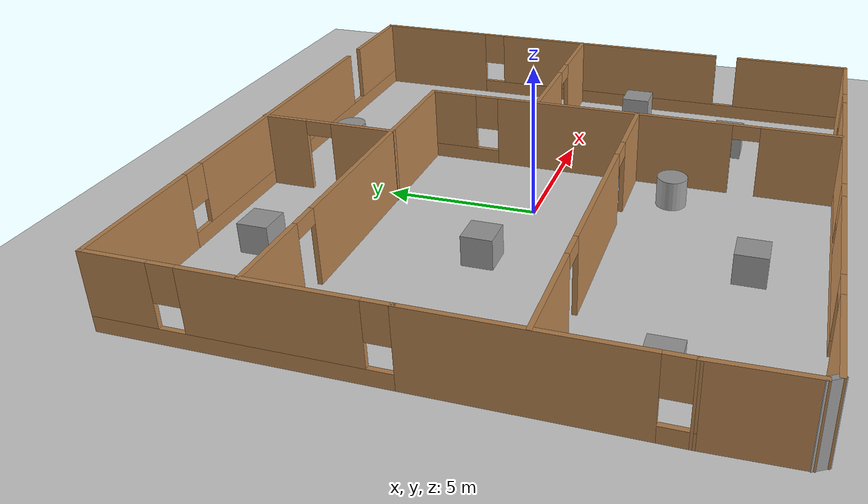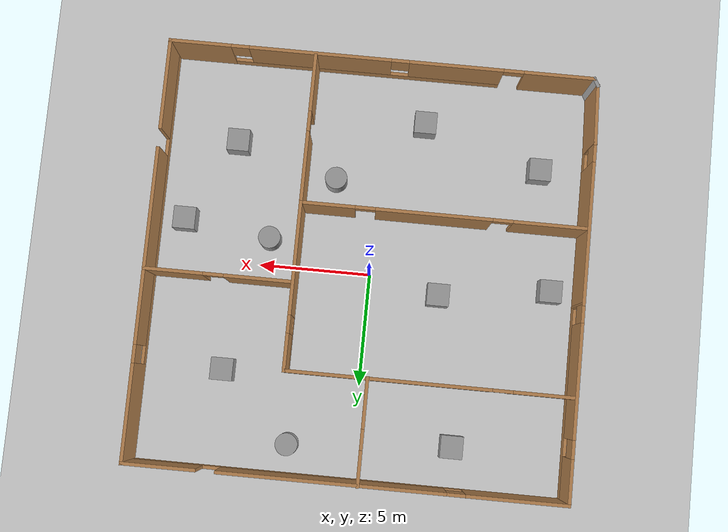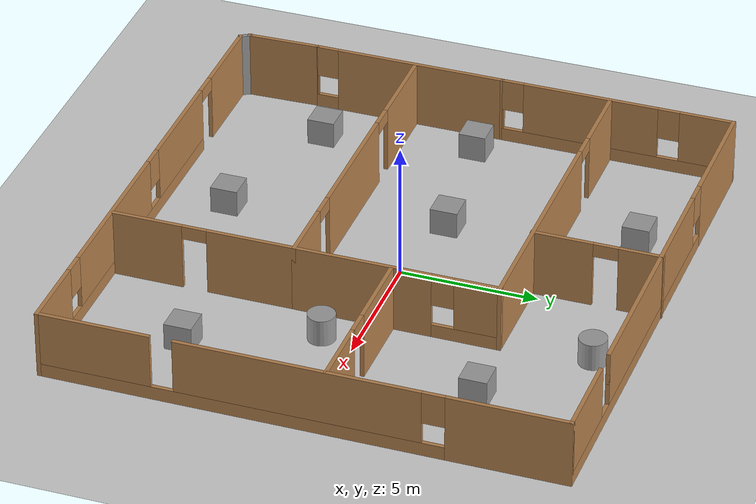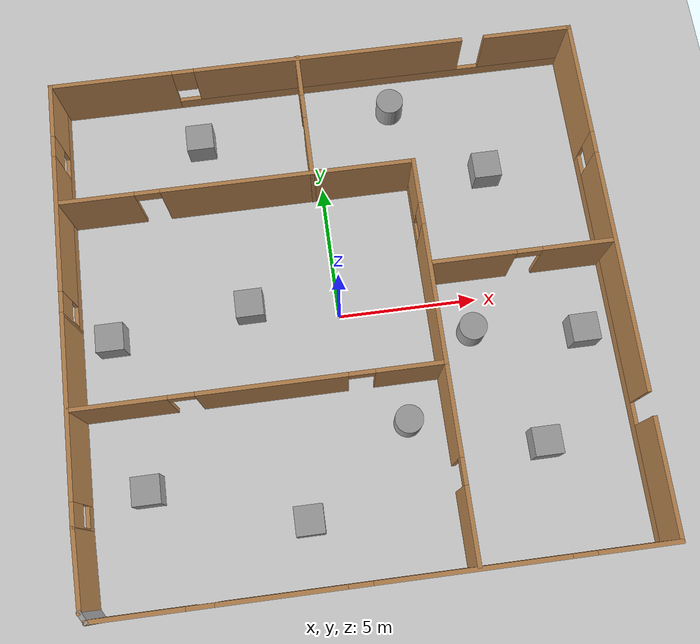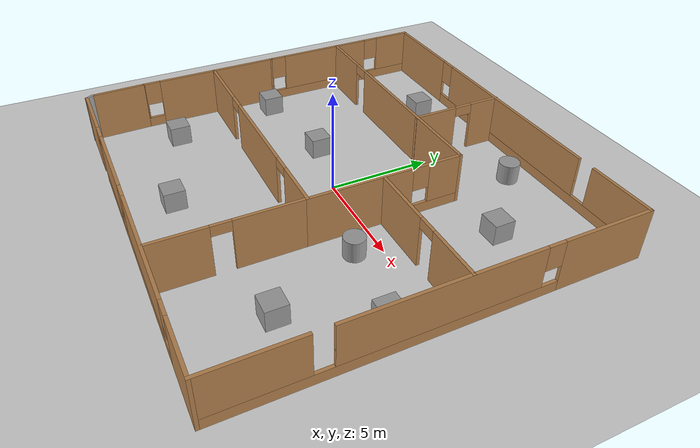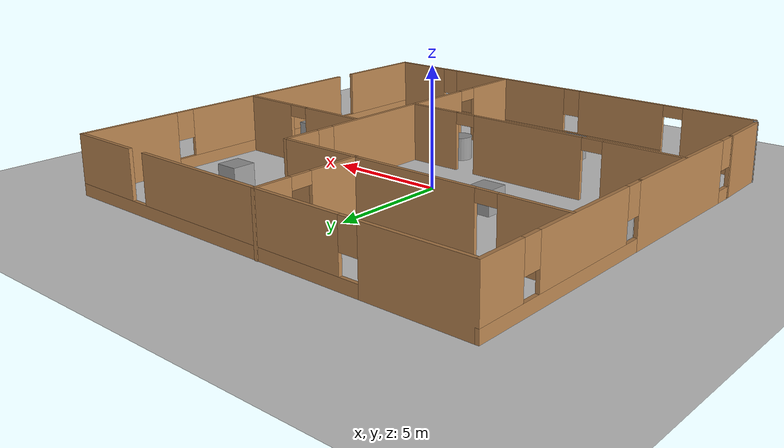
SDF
<sdf version="1.7">
 <world name="default">
  <light name="sun" type="directional">
   <pose>0 0 10 0 -0 0</pose>
   <diffuse>0.8 0.8 0.8 1</diffuse>
   <specular>0.2 0.2 0.2 1</specular>
   <attenuation>
    <range>1000</range>
    <constant>0.9</constant>
    <linear>0.01</linear>
    <quadratic>0.001</quadratic>
   </attenuation>
   <direction>-0.5 0.1 -0.9</direction>
   <spot><inner_angle>0</inner_angle><outer_angle>0</outer_angle><falloff>0</falloff></spot>
  </light>
  <model name="ground_plane">
   <static>1</static>
   <link name="link">
    <collision name="collision">
     <geometry><plane><normal>0 0 1</normal><size>100 100</size></plane></geometry>
     <surface>
      <contact><collide_bitmask>65535</collide_bitmask></contact>
      <friction><ode><mu>100</mu><mu2>50</mu2></ode></friction>
     </surface>
    </collision>
    <visual name="visual">
     <cast_shadows>0</cast_shadows>
     <geometry><plane><normal>0 0 1</normal><size>100 100</size></plane></geometry>
     <material>
      <script><uri>file://media/materials/scripts/gazebo.material</uri><name>Gazebo/Grey</name></script>
     </material>
    </visual>
   </link>
  </model>
  <gravity>0 0 -9.8</gravity>
  <magnetic_field>6e-06 2.3e-05 -4.2e-05</magnetic_field>
  <atmosphere type="adiabatic"/>
  <physics type="ode">
   <max_step_size>0.001</max_step_size>
   <real_time_factor>1</real_time_factor>
   <real_time_update_rate>1000</real_time_update_rate>
  </physics>
  <scene><ambient>0.4 0.4 0.4 1</ambient><background>0.7 0.7 0.7 1</background><shadows>1</shadows></scene>
  <audio><device>default</device></audio>
  <spherical_coordinates>
   <surface_model>EARTH_WGS84</surface_model>
   <latitude_deg>0</latitude_deg>
   <longitude_deg>0</longitude_deg>
   <elevation>0</elevation>
   <heading_deg>0</heading_deg>
  </spherical_coordinates>
  <model name="wall">
   <pose>0.18814 -0.067208 0 0 -0 0</pose>
   <link name="Wall_10">
    <collision name="Wall_10_Collision">
     <geometry><box><size>2.74797 0.15 2.5</size></box></geometry>
     <pose>0 0 1.25 0 -0 0</pose>
    </collision>
    <visual name="Wall_10_Visual">
     <pose>0 0 1.25 0 -0 0</pose>
     <geometry><box><size>2.74797 0.15 2.5</size></box></geometry>
     <material>
      <script><uri>file://media/materials/scripts/gazebo.material</uri><name>Gazebo/Wood</name></script>
      <ambient>1 1 1 1</ambient>
     </material>
     <meta><layer>0</layer></meta>
    </visual>
    <pose>-9.51143 -7.70024 0 0 -0 1.59967</pose>
   </link>
   <link name="Wall_12">
    <pose>-3.2338 -2.6042 0 0 -0 0</pose>
    <visual name="Wall_12_Visual_0">
     <pose>-4.6923 0 1.25 0 -0 0</pose>
     <geometry><box><size>3.3654 0.15 2.5</size></box></geometry>
     <material>
      <script><uri>file://media/materials/scripts/gazebo.material</uri><name>Gazebo/Wood</name></script>
      <ambient>1 1 1 1</ambient>
     </material>
     <meta><layer>0</layer></meta>
    </visual>
    <collision name="Wall_12_Collision_0">
     <geometry><box><size>3.3654 0.15 2.5</size></box></geometry>
     <pose>-4.6923 0 1.25 0 -0 0</pose>
    </collision>
    <visual name="Wall_12_Visual_1">
     <pose>0.457438 0 1.25 0 -0 0</pose>
     <geometry><box><size>5.13407 0.15 2.5</size></box></geometry>
     <material>
      <script><uri>file://media/materials/scripts/gazebo.material</uri><name>Gazebo/Wood</name></script>
      <ambient>1 1 1 1</ambient>
     </material>
     <meta><layer>0</layer></meta>
    </visual>
    <collision name="Wall_12_Collision_1">
     <geometry><box><size>5.13407 0.15 2.5</size></box></geometry>
     <pose>0.457438 0 1.25 0 -0 0</pose>
    </collision>
    <visual name="Wall_12_Visual_2">
     <pose>5.14974 0 1.25 0 -0 0</pose>
     <geometry><box><size>2.45053 0.15 2.5</size></box></geometry>
     <material>
      <script><uri>file://media/materials/scripts/gazebo.material</uri><name>Gazebo/Wood</name></script>
      <ambient>1 1 1 1</ambient>
     </material>
     <meta><layer>0</layer></meta>
    </visual>
    <collision name="Wall_12_Collision_2">
     <geometry><box><size>2.45053 0.15 2.5</size></box></geometry>
     <pose>5.14974 0 1.25 0 -0 0</pose>
    </collision>
    <visual name="Wall_12_Visual_3">
     <pose>-2.5596 0 2.25 0 -0 0</pose>
     <geometry><box><size>0.9 0.15 0.5</size></box></geometry>
     <material>
      <script><uri>file://media/materials/scripts/gazebo.material</uri><name>Gazebo/Wood</name></script>
      <ambient>1 1 1 1</ambient>
     </material>
     <meta><layer>0</layer></meta>
    </visual>
    <collision name="Wall_12_Collision_3">
     <geometry><box><size>0.9 0.15 0.5</size></box></geometry>
     <pose>-2.5596 0 2.25 0 -0 0</pose>
    </collision>
    <visual name="Wall_12_Visual_4">
     <pose>3.47447 0 2.25 0 -0 0</pose>
     <geometry><box><size>0.9 0.15 0.5</size></box></geometry>
     <material>
      <script><uri>file://media/materials/scripts/gazebo.material</uri><name>Gazebo/Wood</name></script>
      <ambient>1 1 1 1</ambient>
     </material>
     <meta><layer>0</layer></meta>
    </visual>
    <collision name="Wall_12_Collision_4">
     <geometry><box><size>0.9 0.15 0.5</size></box></geometry>
     <pose>3.47447 0 2.25 0 -0 0</pose>
    </collision>
   </link>
   <link name="Wall_13">
    <pose>3.0662 -5.90421 0 0 -0 -1.5708</pose>
    <visual name="Wall_13_Visual_0">
     <pose>-1.74609 0 1.25 0 -0 0</pose>
     <geometry><box><size>3.25782 0.15 2.5</size></box></geometry>
     <material>
      <script><uri>file://media/materials/scripts/gazebo.material</uri><name>Gazebo/Wood</name></script>
      <ambient>1 1 1 1</ambient>
     </material>
     <meta><layer>0</layer></meta>
    </visual>
    <collision name="Wall_13_Collision_0">
     <geometry><box><size>3.25782 0.15 2.5</size></box></geometry>
     <pose>-1.74609 0 1.25 0 -0 0</pose>
    </collision>
    <visual name="Wall_13_Visual_1">
     <pose>2.07891 0 1.25 0 -0 0</pose>
     <geometry><box><size>2.59218 0.15 2.5</size></box></geometry>
     <material>
      <script><uri>file://media/materials/scripts/gazebo.material</uri><name>Gazebo/Wood</name></script>
      <ambient>1 1 1 1</ambient>
     </material>
     <meta><layer>0</layer></meta>
    </visual>
    <collision name="Wall_13_Collision_1">
     <geometry><box><size>2.59218 0.15 2.5</size></box></geometry>
     <pose>2.07891 0 1.25 0 -0 0</pose>
    </collision>
    <visual name="Wall_13_Visual_2">
     <pose>0.332819 0 2.25 0 -0 0</pose>
     <geometry><box><size>0.9 0.15 0.5</size></box></geometry>
     <material>
      <script><uri>file://media/materials/scripts/gazebo.material</uri><name>Gazebo/Wood</name></script>
      <ambient>1 1 1 1</ambient>
     </material>
     <meta><layer>0</layer></meta>
    </visual>
    <collision name="Wall_13_Collision_2">
     <geometry><box><size>0.9 0.15 0.5</size></box></geometry>
     <pose>0.332819 0 2.25 0 -0 0</pose>
    </collision>
   </link>
   <link name="Wall_15">
    <pose>3.0662 1.07079 0 0 -0 1.5708</pose>
    <visual name="Wall_15_Visual_0">
     <pose>-1.24271 0 1.25 0 -0 0</pose>
     <geometry><box><size>5.01458 0.15 2.5</size></box></geometry>
     <material>
      <script><uri>file://media/materials/scripts/gazebo.material</uri><name>Gazebo/Wood</name></script>
      <ambient>1 1 1 1</ambient>
     </material>
     <meta><layer>0</layer></meta>
    </visual>
    <collision name="Wall_15_Collision_0">
     <geometry><box><size>5.01458 0.15 2.5</size></box></geometry>
     <pose>-1.24271 0 1.25 0 -0 0</pose>
    </collision>
    <visual name="Wall_15_Visual_1">
     <pose>2.50729 0 0.25 0 -0 0</pose>
     <geometry><box><size>2.48542 0.15 0.5</size></box></geometry>
     <material>
      <script><uri>file://media/materials/scripts/gazebo.material</uri><name>Gazebo/Wood</name></script>
      <ambient>1 1 1 1</ambient>
     </material>
     <meta><layer>0</layer></meta>
    </visual>
    <collision name="Wall_15_Collision_1">
     <geometry><box><size>2.48542 0.15 0.5</size></box></geometry>
     <pose>2.50729 0 0.25 0 -0 0</pose>
    </collision>
    <visual name="Wall_15_Visual_2">
     <pose>2.90729 0 1.5 0 -0 0</pose>
     <geometry><box><size>1.68542 0.15 2</size></box></geometry>
     <material>
      <script><uri>file://media/materials/scripts/gazebo.material</uri><name>Gazebo/Wood</name></script>
      <ambient>1 1 1 1</ambient>
     </material>
     <meta><layer>0</layer></meta>
    </visual>
    <collision name="Wall_15_Collision_2">
     <geometry><box><size>1.68542 0.15 2</size></box></geometry>
     <pose>2.90729 0 1.5 0 -0 0</pose>
    </collision>
    <visual name="Wall_15_Visual_3">
     <pose>1.66458 0 1.9 0 -0 0</pose>
     <geometry><box><size>0.8 0.15 1.2</size></box></geometry>
     <material>
      <script><uri>file://media/materials/scripts/gazebo.material</uri><name>Gazebo/Wood</name></script>
      <ambient>1 1 1 1</ambient>
     </material>
     <meta><layer>0</layer></meta>
    </visual>
    <collision name="Wall_15_Collision_3">
     <geometry><box><size>0.8 0.15 1.2</size></box></geometry>
     <pose>1.66458 0 1.9 0 -0 0</pose>
    </collision>
   </link>
   <link name="Wall_16">
    <pose>-3.2338 4.7458 0 0 -0 3.14159</pose>
    <visual name="Wall_16_Visual_0">
     <pose>-1.84411 0 1.25 0 -0 0</pose>
     <geometry><box><size>9.06177 0.15 2.5</size></box></geometry>
     <material>
      <script><uri>file://media/materials/scripts/gazebo.material</uri><name>Gazebo/Wood</name></script>
      <ambient>1 1 1 1</ambient>
     </material>
     <meta><layer>0</layer></meta>
    </visual>
    <collision name="Wall_16_Collision_0">
     <geometry><box><size>9.06177 0.15 2.5</size></box></geometry>
     <pose>-1.84411 0 1.25 0 -0 0</pose>
    </collision>
    <visual name="Wall_16_Visual_1">
     <pose>4.98088 0 1.25 0 -0 0</pose>
     <geometry><box><size>2.78823 0.15 2.5</size></box></geometry>
     <material>
      <script><uri>file://media/materials/scripts/gazebo.material</uri><name>Gazebo/Wood</name></script>
      <ambient>1 1 1 1</ambient>
     </material>
     <meta><layer>0</layer></meta>
    </visual>
    <collision name="Wall_16_Collision_1">
     <geometry><box><size>2.78823 0.15 2.5</size></box></geometry>
     <pose>4.98088 0 1.25 0 -0 0</pose>
    </collision>
    <visual name="Wall_16_Visual_2">
     <pose>3.13677 0 2.25 0 -0 0</pose>
     <geometry><box><size>0.9 0.15 0.5</size></box></geometry>
     <material>
      <script><uri>file://media/materials/scripts/gazebo.material</uri><name>Gazebo/Wood</name></script>
      <ambient>1 1 1 1</ambient>
     </material>
     <meta><layer>0</layer></meta>
    </visual>
    <collision name="Wall_16_Collision_2">
     <geometry><box><size>0.9 0.15 0.5</size></box></geometry>
     <pose>3.13677 0 2.25 0 -0 0</pose>
    </collision>
   </link>
   <link name="Wall_18">
    <pose>6.37092 0.909016 0 0 -0 0</pose>
    <visual name="Wall_18_Visual_0">
     <pose>-1.76691 0 1.25 0 -0 0</pose>
     <geometry><box><size>2.96617 0.15 2.5</size></box></geometry>
     <material>
      <script><uri>file://media/materials/scripts/gazebo.material</uri><name>Gazebo/Wood</name></script>
      <ambient>1 1 1 1</ambient>
     </material>
     <meta><layer>0</layer></meta>
    </visual>
    <collision name="Wall_18_Collision_0">
     <geometry><box><size>2.96617 0.15 2.5</size></box></geometry>
     <pose>-1.76691 0 1.25 0 -0 0</pose>
    </collision>
    <visual name="Wall_18_Visual_1">
     <pose>1.93309 0 1.25 0 -0 0</pose>
     <geometry><box><size>2.63383 0.15 2.5</size></box></geometry>
     <material>
      <script><uri>file://media/materials/scripts/gazebo.material</uri><name>Gazebo/Wood</name></script>
      <ambient>1 1 1 1</ambient>
     </material>
     <meta><layer>0</layer></meta>
    </visual>
    <collision name="Wall_18_Collision_1">
     <geometry><box><size>2.63383 0.15 2.5</size></box></geometry>
     <pose>1.93309 0 1.25 0 -0 0</pose>
    </collision>
    <visual name="Wall_18_Visual_2">
     <pose>0.166173 0 2.25 0 -0 0</pose>
     <geometry><box><size>0.9 0.15 0.5</size></box></geometry>
     <material>
      <script><uri>file://media/materials/scripts/gazebo.material</uri><name>Gazebo/Wood</name></script>
      <ambient>1 1 1 1</ambient>
     </material>
     <meta><layer>0</layer></meta>
    </visual>
    <collision name="Wall_18_Collision_2">
     <geometry><box><size>0.9 0.15 0.5</size></box></geometry>
     <pose>0.166173 0 2.25 0 -0 0</pose>
    </collision>
   </link>
   <link name="Wall_22">
    <pose>-0.546378 7.02924 0 0 -0 1.5708</pose>
    <visual name="Wall_22_Visual_0">
     <pose>-1.25074 0 1.25 0 -0 0</pose>
     <geometry><box><size>2.24851 0.15 2.5</size></box></geometry>
     <material>
      <script><uri>file://media/materials/scripts/gazebo.material</uri><name>Gazebo/Wood</name></script>
      <ambient>1 1 1 1</ambient>
     </material>
     <meta><layer>0</layer></meta>
    </visual>
    <collision name="Wall_22_Collision_0">
     <geometry><box><size>2.24851 0.15 2.5</size></box></geometry>
     <pose>-1.25074 0 1.25 0 -0 0</pose>
    </collision>
    <visual name="Wall_22_Visual_1">
     <pose>1.57425 0 1.25 0 -0 0</pose>
     <geometry><box><size>1.60149 0.15 2.5</size></box></geometry>
     <material>
      <script><uri>file://media/materials/scripts/gazebo.material</uri><name>Gazebo/Wood</name></script>
      <ambient>1 1 1 1</ambient>
     </material>
     <meta><layer>0</layer></meta>
    </visual>
    <collision name="Wall_22_Collision_1">
     <geometry><box><size>1.60149 0.15 2.5</size></box></geometry>
     <pose>1.57425 0 1.25 0 -0 0</pose>
    </collision>
    <visual name="Wall_22_Visual_2">
     <pose>0.32351 0 2.25 0 -0 0</pose>
     <geometry><box><size>0.9 0.15 0.5</size></box></geometry>
     <material>
      <script><uri>file://media/materials/scripts/gazebo.material</uri><name>Gazebo/Wood</name></script>
      <ambient>1 1 1 1</ambient>
     </material>
     <meta><layer>0</layer></meta>
    </visual>
    <collision name="Wall_22_Collision_2">
     <geometry><box><size>0.9 0.15 0.5</size></box></geometry>
     <pose>0.32351 0 2.25 0 -0 0</pose>
    </collision>
   </link>
   <link name="Wall_3">
    <pose>-9.54893 -2.85179 0 0 -0 -1.5708</pose>
    <visual name="Wall_3_Visual_0">
     <pose>-0.45106 0 1.25 0 -0 0</pose>
     <geometry><box><size>6.34788 0.15 2.5</size></box></geometry>
     <material>
      <script><uri>file://media/materials/scripts/gazebo.material</uri><name>Gazebo/Wood</name></script>
      <ambient>1 1 1 1</ambient>
     </material>
     <meta><layer>0</layer></meta>
    </visual>
    <collision name="Wall_3_Collision_0">
     <geometry><box><size>6.34788 0.15 2.5</size></box></geometry>
     <pose>-0.45106 0 1.25 0 -0 0</pose>
    </collision>
    <visual name="Wall_3_Visual_1">
     <pose>3.17394 0 0.25 0 -0 0</pose>
     <geometry><box><size>0.902119 0.15 0.5</size></box></geometry>
     <material>
      <script><uri>file://media/materials/scripts/gazebo.material</uri><name>Gazebo/Wood</name></script>
      <ambient>1 1 1 1</ambient>
     </material>
     <meta><layer>0</layer></meta>
    </visual>
    <collision name="Wall_3_Collision_1">
     <geometry><box><size>0.902119 0.15 0.5</size></box></geometry>
     <pose>3.17394 0 0.25 0 -0 0</pose>
    </collision>
    <visual name="Wall_3_Visual_2">
     <pose>3.57394 0 1.5 0 -0 0</pose>
     <geometry><box><size>0.102119 0.15 2</size></box></geometry>
     <material>
      <script><uri>file://media/materials/scripts/gazebo.material</uri><name>Gazebo/Wood</name></script>
      <ambient>1 1 1 1</ambient>
     </material>
     <meta><layer>0</layer></meta>
    </visual>
    <collision name="Wall_3_Collision_2">
     <geometry><box><size>0.102119 0.15 2</size></box></geometry>
     <pose>3.57394 0 1.5 0 -0 0</pose>
    </collision>
    <visual name="Wall_3_Visual_3">
     <pose>3.12288 0 1.9 0 -0 0</pose>
     <geometry><box><size>0.8 0.15 1.2</size></box></geometry>
     <material>
      <script><uri>file://media/materials/scripts/gazebo.material</uri><name>Gazebo/Wood</name></script>
      <ambient>1 1 1 1</ambient>
     </material>
     <meta><layer>0</layer></meta>
    </visual>
    <collision name="Wall_3_Collision_3">
     <geometry><box><size>0.8 0.15 1.2</size></box></geometry>
     <pose>3.12288 0 1.9 0 -0 0</pose>
    </collision>
   </link>
   <link name="Wall_5">
    <pose>-9.54893 4.99821 0 0 -0 1.5708</pose>
    <visual name="Wall_5_Visual_0">
     <pose>-4.3322 0 1.25 0 -0 0</pose>
     <geometry><box><size>0.085595 0.15 2.5</size></box></geometry>
     <material>
      <script><uri>file://media/materials/scripts/gazebo.material</uri><name>Gazebo/Wood</name></script>
      <ambient>1 1 1 1</ambient>
     </material>
     <meta><layer>0</layer></meta>
    </visual>
    <collision name="Wall_5_Collision_0">
     <geometry><box><size>0.085595 0.15 2.5</size></box></geometry>
     <pose>-4.3322 0 1.25 0 -0 0</pose>
    </collision>
    <visual name="Wall_5_Visual_1">
     <pose>0.042797 0 0.25 0 -0 0</pose>
     <geometry><box><size>8.66441 0.15 0.5</size></box></geometry>
     <material>
      <script><uri>file://media/materials/scripts/gazebo.material</uri><name>Gazebo/Wood</name></script>
      <ambient>1 1 1 1</ambient>
     </material>
     <meta><layer>0</layer></meta>
    </visual>
    <collision name="Wall_5_Collision_1">
     <geometry><box><size>8.66441 0.15 0.5</size></box></geometry>
     <pose>0.042797 0 0.25 0 -0 0</pose>
    </collision>
    <visual name="Wall_5_Visual_2">
     <pose>-0.97731 0 1.5 0 -0 0</pose>
     <geometry><box><size>5.02419 0.15 2</size></box></geometry>
     <material>
      <script><uri>file://media/materials/scripts/gazebo.material</uri><name>Gazebo/Wood</name></script>
      <ambient>1 1 1 1</ambient>
     </material>
     <meta><layer>0</layer></meta>
    </visual>
    <collision name="Wall_5_Collision_2">
     <geometry><box><size>5.02419 0.15 2</size></box></geometry>
     <pose>-0.97731 0 1.5 0 -0 0</pose>
    </collision>
    <visual name="Wall_5_Visual_3">
     <pose>3.35489 0 1.5 0 -0 0</pose>
     <geometry><box><size>2.04021 0.15 2</size></box></geometry>
     <material>
      <script><uri>file://media/materials/scripts/gazebo.material</uri><name>Gazebo/Wood</name></script>
      <ambient>1 1 1 1</ambient>
     </material>
     <meta><layer>0</layer></meta>
    </visual>
    <collision name="Wall_5_Collision_3">
     <geometry><box><size>2.04021 0.15 2</size></box></geometry>
     <pose>3.35489 0 1.5 0 -0 0</pose>
    </collision>
    <visual name="Wall_5_Visual_4">
     <pose>-3.88941 0 1.9 0 -0 0</pose>
     <geometry><box><size>0.8 0.15 1.2</size></box></geometry>
     <material>
      <script><uri>file://media/materials/scripts/gazebo.material</uri><name>Gazebo/Wood</name></script>
      <ambient>1 1 1 1</ambient>
     </material>
     <meta><layer>0</layer></meta>
    </visual>
    <collision name="Wall_5_Collision_4">
     <geometry><box><size>0.8 0.15 1.2</size></box></geometry>
     <pose>-3.88941 0 1.9 0 -0 0</pose>
    </collision>
    <visual name="Wall_5_Visual_5">
     <pose>1.93478 0 1.9 0 -0 0</pose>
     <geometry><box><size>0.8 0.15 1.2</size></box></geometry>
     <material>
      <script><uri>file://media/materials/scripts/gazebo.material</uri><name>Gazebo/Wood</name></script>
      <ambient>1 1 1 1</ambient>
     </material>
     <meta><layer>0</layer></meta>
    </visual>
    <collision name="Wall_5_Collision_5">
     <geometry><box><size>0.8 0.15 1.2</size></box></geometry>
     <pose>1.93478 0 1.9 0 -0 0</pose>
    </collision>
   </link>
   <link name="Wall_6">
    <pose>0.001067 9.29821 0 0 -0 0</pose>
    <visual name="Wall_6_Visual_0">
     <pose>-7.38503 0 1.25 0 -0 0</pose>
     <geometry><box><size>4.47994 0.15 2.5</size></box></geometry>
     <material>
      <script><uri>file://media/materials/scripts/gazebo.material</uri><name>Gazebo/Wood</name></script>
      <ambient>1 1 1 1</ambient>
     </material>
     <meta><layer>0</layer></meta>
    </visual>
    <collision name="Wall_6_Collision_0">
     <geometry><box><size>4.47994 0.15 2.5</size></box></geometry>
     <pose>-7.38503 0 1.25 0 -0 0</pose>
    </collision>
    <visual name="Wall_6_Visual_1">
     <pose>2.23997 0 0.25 0 -0 0</pose>
     <geometry><box><size>14.7701 0.15 0.5</size></box></geometry>
     <material>
      <script><uri>file://media/materials/scripts/gazebo.material</uri><name>Gazebo/Wood</name></script>
      <ambient>1 1 1 1</ambient>
     </material>
     <meta><layer>0</layer></meta>
    </visual>
    <collision name="Wall_6_Collision_1">
     <geometry><box><size>14.7701 0.15 0.5</size></box></geometry>
     <pose>2.23997 0 0.25 0 -0 0</pose>
    </collision>
    <visual name="Wall_6_Visual_2">
     <pose>0.606899 0 1.5 0 -0 0</pose>
     <geometry><box><size>9.90392 0.15 2</size></box></geometry>
     <material>
      <script><uri>file://media/materials/scripts/gazebo.material</uri><name>Gazebo/Wood</name></script>
      <ambient>1 1 1 1</ambient>
     </material>
     <meta><layer>0</layer></meta>
    </visual>
    <collision name="Wall_6_Collision_2">
     <geometry><box><size>9.90392 0.15 2</size></box></geometry>
     <pose>0.606899 0 1.5 0 -0 0</pose>
    </collision>
    <visual name="Wall_6_Visual_3">
     <pose>7.99193 0 1.5 0 -0 0</pose>
     <geometry><box><size>3.26614 0.15 2</size></box></geometry>
     <material>
      <script><uri>file://media/materials/scripts/gazebo.material</uri><name>Gazebo/Wood</name></script>
      <ambient>1 1 1 1</ambient>
     </material>
     <meta><layer>0</layer></meta>
    </visual>
    <collision name="Wall_6_Collision_3">
     <geometry><box><size>3.26614 0.15 2</size></box></geometry>
     <pose>7.99193 0 1.5 0 -0 0</pose>
    </collision>
    <visual name="Wall_6_Visual_4">
     <pose>-4.74506 0 1.9 0 -0 0</pose>
     <geometry><box><size>0.8 0.15 1.2</size></box></geometry>
     <material>
      <script><uri>file://media/materials/scripts/gazebo.material</uri><name>Gazebo/Wood</name></script>
      <ambient>1 1 1 1</ambient>
     </material>
     <meta><layer>0</layer></meta>
    </visual>
    <collision name="Wall_6_Collision_4">
     <geometry><box><size>0.8 0.15 1.2</size></box></geometry>
     <pose>-4.74506 0 1.9 0 -0 0</pose>
    </collision>
    <visual name="Wall_6_Visual_5">
     <pose>5.55886 0 1.9 0 -0 0</pose>
     <geometry><box><size>0 0.15 1.2</size></box></geometry>
     <material>
      <script><uri>file://media/materials/scripts/gazebo.material</uri><name>Gazebo/Wood</name></script>
      <ambient>1 1 1 1</ambient>
     </material>
     <meta><layer>0</layer></meta>
    </visual>
    <collision name="Wall_6_Collision_5">
     <geometry><box><size>0 0.15 1.2</size></box></geometry>
     <pose>5.55886 0 1.9 0 -0 0</pose>
    </collision>
   </link>
   <link name="Wall_7">
    <pose>9.55107 -0.001793 0 0 -0 -1.5708</pose>
    <visual name="Wall_7_Visual_0">
     <pose>-7.20055 0 1.25 0 -0 0</pose>
     <geometry><box><size>4.3489 0.15 2.5</size></box></geometry>
     <material>
      <script><uri>file://media/materials/scripts/gazebo.material</uri><name>Gazebo/Wood</name></script>
      <ambient>1 1 1 1</ambient>
     </material>
     <meta><layer>0</layer></meta>
    </visual>
    <collision name="Wall_7_Collision_0">
     <geometry><box><size>4.3489 0.15 2.5</size></box></geometry>
     <pose>-7.20055 0 1.25 0 -0 0</pose>
    </collision>
    <visual name="Wall_7_Visual_1">
     <pose>2.17445 0 0.25 0 -0 0</pose>
     <geometry><box><size>14.4011 0.15 0.5</size></box></geometry>
     <material>
      <script><uri>file://media/materials/scripts/gazebo.material</uri><name>Gazebo/Wood</name></script>
      <ambient>1 1 1 1</ambient>
     </material>
     <meta><layer>0</layer></meta>
    </visual>
    <collision name="Wall_7_Collision_1">
     <geometry><box><size>14.4011 0.15 0.5</size></box></geometry>
     <pose>2.17445 0 0.25 0 -0 0</pose>
    </collision>
    <visual name="Wall_7_Visual_2">
     <pose>0.122455 0 1.5 0 -0 0</pose>
     <geometry><box><size>8.6971 0.15 2</size></box></geometry>
     <material>
      <script><uri>file://media/materials/scripts/gazebo.material</uri><name>Gazebo/Wood</name></script>
      <ambient>1 1 1 1</ambient>
     </material>
     <meta><layer>0</layer></meta>
    </visual>
    <collision name="Wall_7_Collision_2">
     <geometry><box><size>8.6971 0.15 2</size></box></geometry>
     <pose>0.122455 0 1.5 0 -0 0</pose>
    </collision>
    <visual name="Wall_7_Visual_3">
     <pose>7.323 0 1.5 0 -0 0</pose>
     <geometry><box><size>4.10399 0.15 2</size></box></geometry>
     <material>
      <script><uri>file://media/materials/scripts/gazebo.material</uri><name>Gazebo/Wood</name></script>
      <ambient>1 1 1 1</ambient>
     </material>
     <meta><layer>0</layer></meta>
    </visual>
    <collision name="Wall_7_Collision_3">
     <geometry><box><size>4.10399 0.15 2</size></box></geometry>
     <pose>7.323 0 1.5 0 -0 0</pose>
    </collision>
    <visual name="Wall_7_Visual_4">
     <pose>-4.6261 0 1.9 0 -0 0</pose>
     <geometry><box><size>0.8 0.15 1.2</size></box></geometry>
     <material>
      <script><uri>file://media/materials/scripts/gazebo.material</uri><name>Gazebo/Wood</name></script>
      <ambient>1 1 1 1</ambient>
     </material>
     <meta><layer>0</layer></meta>
    </visual>
    <collision name="Wall_7_Collision_4">
     <geometry><box><size>0.8 0.15 1.2</size></box></geometry>
     <pose>-4.6261 0 1.9 0 -0 0</pose>
    </collision>
    <visual name="Wall_7_Visual_5">
     <pose>4.47101 0 1.9 0 -0 0</pose>
     <geometry><box><size>0 0.15 1.2</size></box></geometry>
     <material>
      <script><uri>file://media/materials/scripts/gazebo.material</uri><name>Gazebo/Wood</name></script>
      <ambient>1 1 1 1</ambient>
     </material>
     <meta><layer>0</layer></meta>
    </visual>
    <collision name="Wall_7_Collision_5">
     <geometry><box><size>0 0.15 1.2</size></box></geometry>
     <pose>4.47101 0 1.9 0 -0 0</pose>
    </collision>
   </link>
   <link name="Wall_8">
    <pose>0.126067 -9.30179 0 0 -0 3.14159</pose>
    <visual name="Wall_8_Visual_0">
     <pose>-8.10304 0 1.25 0 -0 0</pose>
     <geometry><box><size>2.79391 0.15 2.5</size></box></geometry>
     <material>
      <script><uri>file://media/materials/scripts/gazebo.material</uri><name>Gazebo/Wood</name></script>
      <ambient>1 1 1 1</ambient>
     </material>
     <meta><layer>0</layer></meta>
    </visual>
    <collision name="Wall_8_Collision_0">
     <geometry><box><size>2.79391 0.15 2.5</size></box></geometry>
     <pose>-8.10304 0 1.25 0 -0 0</pose>
    </collision>
    <visual name="Wall_8_Visual_1">
     <pose>7.9085 0 1.25 0 -0 0</pose>
     <geometry><box><size>3.18301 0.15 2.5</size></box></geometry>
     <material>
      <script><uri>file://media/materials/scripts/gazebo.material</uri><name>Gazebo/Wood</name></script>
      <ambient>1 1 1 1</ambient>
     </material>
     <meta><layer>0</layer></meta>
    </visual>
    <collision name="Wall_8_Collision_1">
     <geometry><box><size>3.18301 0.15 2.5</size></box></geometry>
     <pose>7.9085 0 1.25 0 -0 0</pose>
    </collision>
    <visual name="Wall_8_Visual_2">
     <pose>-0.644548 0 0.25 0 -0 0</pose>
     <geometry><box><size>12.1231 0.15 0.5</size></box></geometry>
     <material>
      <script><uri>file://media/materials/scripts/gazebo.material</uri><name>Gazebo/Wood</name></script>
      <ambient>1 1 1 1</ambient>
     </material>
     <meta><layer>0</layer></meta>
    </visual>
    <collision name="Wall_8_Collision_2">
     <geometry><box><size>12.1231 0.15 0.5</size></box></geometry>
     <pose>-0.644548 0 0.25 0 -0 0</pose>
    </collision>
    <visual name="Wall_8_Visual_3">
     <pose>-2.73812 0 1.5 0 -0 0</pose>
     <geometry><box><size>6.33595 0.15 2</size></box></geometry>
     <material>
      <script><uri>file://media/materials/scripts/gazebo.material</uri><name>Gazebo/Wood</name></script>
      <ambient>1 1 1 1</ambient>
     </material>
     <meta><layer>0</layer></meta>
    </visual>
    <collision name="Wall_8_Collision_3">
     <geometry><box><size>6.33595 0.15 2</size></box></geometry>
     <pose>-2.73812 0 1.5 0 -0 0</pose>
    </collision>
    <visual name="Wall_8_Visual_4">
     <pose>3.32342 0 1.5 0 -0 0</pose>
     <geometry><box><size>4.18714 0.15 2</size></box></geometry>
     <material>
      <script><uri>file://media/materials/scripts/gazebo.material</uri><name>Gazebo/Wood</name></script>
      <ambient>1 1 1 1</ambient>
     </material>
     <meta><layer>0</layer></meta>
    </visual>
    <collision name="Wall_8_Collision_4">
     <geometry><box><size>4.18714 0.15 2</size></box></geometry>
     <pose>3.32342 0 1.5 0 -0 0</pose>
    </collision>
    <visual name="Wall_8_Visual_5">
     <pose>-6.30609 0 1.9 0 -0 0</pose>
     <geometry><box><size>0.8 0.15 1.2</size></box></geometry>
     <material>
      <script><uri>file://media/materials/scripts/gazebo.material</uri><name>Gazebo/Wood</name></script>
      <ambient>1 1 1 1</ambient>
     </material>
     <meta><layer>0</layer></meta>
    </visual>
    <collision name="Wall_8_Collision_5">
     <geometry><box><size>0.8 0.15 1.2</size></box></geometry>
     <pose>-6.30609 0 1.9 0 -0 0</pose>
    </collision>
    <visual name="Wall_8_Visual_6">
     <pose>0.829855 0 1.9 0 -0 0</pose>
     <geometry><box><size>0.8 0.15 1.2</size></box></geometry>
     <material>
      <script><uri>file://media/materials/scripts/gazebo.material</uri><name>Gazebo/Wood</name></script>
      <ambient>1 1 1 1</ambient>
     </material>
     <meta><layer>0</layer></meta>
    </visual>
    <collision name="Wall_8_Collision_6">
     <geometry><box><size>0.8 0.15 1.2</size></box></geometry>
     <pose>0.829855 0 1.9 0 -0 0</pose>
    </collision>
    <visual name="Wall_8_Visual_7">
     <pose>5.86699 0 2.25 0 -0 0</pose>
     <geometry><box><size>0.9 0.15 0.5</size></box></geometry>
     <material>
      <script><uri>file://media/materials/scripts/gazebo.material</uri><name>Gazebo/Wood</name></script>
      <ambient>1 1 1 1</ambient>
     </material>
     <meta><layer>0</layer></meta>
    </visual>
    <collision name="Wall_8_Collision_7">
     <geometry><box><size>0.9 0.15 0.5</size></box></geometry>
     <pose>5.86699 0 2.25 0 -0 0</pose>
    </collision>
   </link>
   <link name="Wall_9">
    <collision name="Wall_9_Collision">
     <geometry><box><size>0.5 0.15 2.5</size></box></geometry>
     <pose>0 0 1.25 0 -0 0</pose>
    </collision>
    <visual name="Wall_9_Visual">
     <pose>0 0 1.25 0 -0 0</pose>
     <geometry><box><size>0.5 0.15 2.5</size></box></geometry>
     <material>
      <script><uri>file://media/materials/scripts/gazebo.material</uri><name>Gazebo/Grey</name></script>
      <ambient>1 1 1 1</ambient>
     </material>
     <meta><layer>0</layer></meta>
    </visual>
    <pose>-9.38643 -9.15024 0 0 -0 2.0944</pose>
   </link>
   <static>1</static>
  </model>
  <model name="obstacles1">
   <link name="link_0">
    <inertial>
     <mass>1</mass>
     <inertia>
      <ixx>0.166667</ixx>
      <ixy>0</ixy>
      <ixz>0</ixz>
      <iyy>0.166667</iyy>
      <iyz>0</iyz>
      <izz>0.166667</izz>
     </inertia>
    </inertial>
    <pose>-2.97264 0.662135 0.5 0 -0 0</pose>
    <visual name="visual">
     <geometry><box><size>1 1 1</size></box></geometry>
     <material>
      <lighting>1</lighting>
      <script><uri>file://media/materials/scripts/gazebo.material</uri><name>Gazebo/Grey</name></script>
      <shader type="pixel"/>
     </material>
    </visual>
    <collision name="collision">
     <geometry><box><size>1 1 1</size></box></geometry>
     <surface>
      <friction>
       <ode><mu>1</mu><mu2>1</mu2><fdir1>0 0 0</fdir1><slip1>0</slip1><slip2>0</slip2></ode>
       <torsional>
        <coefficient>1</coefficient>
        <patch_radius>0</patch_radius>
        <surface_radius>0</surface_radius>
        <use_patch_radius>1</use_patch_radius>
        <ode><slip>0</slip></ode>
       </torsional>
      </friction>
      <bounce><restitution_coefficient>0</restitution_coefficient><threshold>1e+06</threshold></bounce>
      <contact>
       <collide_without_contact>0</collide_without_contact>
       <collide_without_contact_bitmask>1</collide_without_contact_bitmask>
       <collide_bitmask>1</collide_bitmask>
       <ode>
        <soft_cfm>0</soft_cfm>
        <soft_erp>0.2</soft_erp>
        <kp>1e+13</kp>
        <kd>1</kd>
        <max_vel>0.01</max_vel>
        <min_depth>0</min_depth>
       </ode>
       <bullet>
        <split_impulse>1</split_impulse>
        <split_impulse_penetration_threshold>-0.01</split_impulse_penetration_threshold>
        <soft_cfm>0</soft_cfm>
        <soft_erp>0.2</soft_erp>
        <kp>1e+13</kp>
        <kd>1</kd>
       </bullet>
      </contact>
     </surface>
    </collision>
   </link>
   <link name="link_1">
    <inertial>
     <mass>1</mass>
     <inertia>
      <ixx>0.166667</ixx>
      <ixy>0</ixy>
      <ixz>0</ixz>
      <iyy>0.166667</iyy>
      <iyz>0</iyz>
      <izz>0.166667</izz>
     </inertia>
    </inertial>
    <pose>-7.96785 0.040616 0.5 0 -0 0</pose>
    <visual name="visual">
     <geometry><box><size>1 1 1</size></box></geometry>
     <material>
      <lighting>1</lighting>
      <script><uri>file://media/materials/scripts/gazebo.material</uri><name>Gazebo/Grey</name></script>
      <shader type="pixel"/>
     </material>
    </visual>
    <collision name="collision">
     <geometry><box><size>1 1 1</size></box></geometry>
     <surface>
      <friction>
       <ode><mu>1</mu><mu2>1</mu2><fdir1>0 0 0</fdir1><slip1>0</slip1><slip2>0</slip2></ode>
       <torsional>
        <coefficient>1</coefficient>
        <patch_radius>0</patch_radius>
        <surface_radius>0</surface_radius>
        <use_patch_radius>1</use_patch_radius>
        <ode><slip>0</slip></ode>
       </torsional>
      </friction>
      <bounce><restitution_coefficient>0</restitution_coefficient><threshold>1e+06</threshold></bounce>
      <contact>
       <collide_without_contact>0</collide_without_contact>
       <collide_without_contact_bitmask>1</collide_without_contact_bitmask>
       <collide_bitmask>1</collide_bitmask>
       <ode>
        <soft_cfm>0</soft_cfm>
        <soft_erp>0.2</soft_erp>
        <kp>1e+13</kp>
        <kd>1</kd>
        <max_vel>0.01</max_vel>
        <min_depth>0</min_depth>
       </ode>
       <bullet>
        <split_impulse>1</split_impulse>
        <split_impulse_penetration_threshold>-0.01</split_impulse_penetration_threshold>
        <soft_cfm>0</soft_cfm>
        <soft_erp>0.2</soft_erp>
        <kp>1e+13</kp>
        <kd>1</kd>
       </bullet>
      </contact>
     </surface>
    </collision>
   </link>
   <link name="link_10">
    <inertial>
     <mass>1</mass>
     <inertia><ixx>0.145833</ixx><ixy>0</ixy><ixz>0</ixz><iyy>0.145833</iyy><iyz>0</iyz><izz>0.125</izz></inertia>
    </inertial>
    <pose>2.07536 -4.17567 0.5 0 -0 0</pose>
    <visual name="visual">
     <geometry><cylinder><radius>0.5</radius><length>1</length></cylinder></geometry>
     <material>
      <lighting>1</lighting>
      <script><uri>file://media/materials/scripts/gazebo.material</uri><name>Gazebo/Grey</name></script>
      <shader type="pixel"/>
     </material>
    </visual>
    <collision name="collision">
     <geometry><cylinder><radius>0.5</radius><length>1</length></cylinder></geometry>
     <surface>
      <friction>
       <ode><mu>1</mu><mu2>1</mu2><fdir1>0 0 0</fdir1><slip1>0</slip1><slip2>0</slip2></ode>
       <torsional>
        <coefficient>1</coefficient>
        <patch_radius>0</patch_radius>
        <surface_radius>0</surface_radius>
        <use_patch_radius>1</use_patch_radius>
        <ode><slip>0</slip></ode>
       </torsional>
      </friction>
      <bounce><restitution_coefficient>0</restitution_coefficient><threshold>1e+06</threshold></bounce>
      <contact>
       <collide_without_contact>0</collide_without_contact>
       <collide_without_contact_bitmask>1</collide_without_contact_bitmask>
       <collide_bitmask>1</collide_bitmask>
       <ode>
        <soft_cfm>0</soft_cfm>
        <soft_erp>0.2</soft_erp>
        <kp>1e+13</kp>
        <kd>1</kd>
        <max_vel>0.01</max_vel>
        <min_depth>0</min_depth>
       </ode>
       <bullet>
        <split_impulse>1</split_impulse>
        <split_impulse_penetration_threshold>-0.01</split_impulse_penetration_threshold>
        <soft_cfm>0</soft_cfm>
        <soft_erp>0.2</soft_erp>
        <kp>1e+13</kp>
        <kd>1</kd>
       </bullet>
      </contact>
     </surface>
    </collision>
   </link>
   <link name="link_2">
    <inertial>
     <mass>1</mass>
     <inertia>
      <ixx>0.166667</ixx>
      <ixy>0</ixy>
      <ixz>0</ixz>
      <iyy>0.166667</iyy>
      <iyz>0</iyz>
      <izz>0.166667</izz>
     </inertia>
    </inertial>
    <pose>-7.08221 -5.41869 0.5 0 -0 0</pose>
    <visual name="visual">
     <geometry><box><size>1 1 1</size></box></geometry>
     <material>
      <lighting>1</lighting>
      <script><uri>file://media/materials/scripts/gazebo.material</uri><name>Gazebo/Grey</name></script>
      <shader type="pixel"/>
     </material>
    </visual>
    <collision name="collision">
     <geometry><box><size>1 1 1</size></box></geometry>
     <surface>
      <friction>
       <ode><mu>1</mu><mu2>1</mu2><fdir1>0 0 0</fdir1><slip1>0</slip1><slip2>0</slip2></ode>
       <torsional>
        <coefficient>1</coefficient>
        <patch_radius>0</patch_radius>
        <surface_radius>0</surface_radius>
        <use_patch_radius>1</use_patch_radius>
        <ode><slip>0</slip></ode>
       </torsional>
      </friction>
      <bounce><restitution_coefficient>0</restitution_coefficient><threshold>1e+06</threshold></bounce>
      <contact>
       <collide_without_contact>0</collide_without_contact>
       <collide_without_contact_bitmask>1</collide_without_contact_bitmask>
       <collide_bitmask>1</collide_bitmask>
       <ode>
        <soft_cfm>0</soft_cfm>
        <soft_erp>0.2</soft_erp>
        <kp>1e+13</kp>
        <kd>1</kd>
        <max_vel>0.01</max_vel>
        <min_depth>0</min_depth>
       </ode>
       <bullet>
        <split_impulse>1</split_impulse>
        <split_impulse_penetration_threshold>-0.01</split_impulse_penetration_threshold>
        <soft_cfm>0</soft_cfm>
        <soft_erp>0.2</soft_erp>
        <kp>1e+13</kp>
        <kd>1</kd>
       </bullet>
      </contact>
     </surface>
    </collision>
   </link>
   <link name="link_3">
    <inertial>
     <mass>1</mass>
     <inertia>
      <ixx>0.166667</ixx>
      <ixy>0</ixy>
      <ixz>0</ixz>
      <iyy>0.166667</iyy>
      <iyz>0</iyz>
      <izz>0.166667</izz>
     </inertia>
    </inertial>
    <pose>-1.7334 -7.09732 0.5 0 -0 0</pose>
    <visual name="visual">
     <geometry><box><size>1 1 1</size></box></geometry>
     <material>
      <lighting>1</lighting>
      <script><uri>file://media/materials/scripts/gazebo.material</uri><name>Gazebo/Grey</name></script>
      <shader type="pixel"/>
     </material>
    </visual>
    <collision name="collision">
     <geometry><box><size>1 1 1</size></box></geometry>
     <surface>
      <friction>
       <ode><mu>1</mu><mu2>1</mu2><fdir1>0 0 0</fdir1><slip1>0</slip1><slip2>0</slip2></ode>
       <torsional>
        <coefficient>1</coefficient>
        <patch_radius>0</patch_radius>
        <surface_radius>0</surface_radius>
        <use_patch_radius>1</use_patch_radius>
        <ode><slip>0</slip></ode>
       </torsional>
      </friction>
      <bounce><restitution_coefficient>0</restitution_coefficient><threshold>1e+06</threshold></bounce>
      <contact>
       <collide_without_contact>0</collide_without_contact>
       <collide_without_contact_bitmask>1</collide_without_contact_bitmask>
       <collide_bitmask>1</collide_bitmask>
       <ode>
        <soft_cfm>0</soft_cfm>
        <soft_erp>0.2</soft_erp>
        <kp>1e+13</kp>
        <kd>1</kd>
        <max_vel>0.01</max_vel>
        <min_depth>0</min_depth>
       </ode>
       <bullet>
        <split_impulse>1</split_impulse>
        <split_impulse_penetration_threshold>-0.01</split_impulse_penetration_threshold>
        <soft_cfm>0</soft_cfm>
        <soft_erp>0.2</soft_erp>
        <kp>1e+13</kp>
        <kd>1</kd>
       </bullet>
      </contact>
     </surface>
    </collision>
   </link>
   <link name="link_4">
    <inertial>
     <mass>1</mass>
     <inertia>
      <ixx>0.166667</ixx>
      <ixy>0</ixy>
      <ixz>0</ixz>
      <iyy>0.166667</iyy>
      <iyz>0</iyz>
      <izz>0.166667</izz>
     </inertia>
    </inertial>
    <pose>6.65184 -5.51588 0.5 0 -0 0</pose>
    <visual name="visual">
     <geometry><box><size>1 1 1</size></box></geometry>
     <material>
      <lighting>1</lighting>
      <script><uri>file://media/materials/scripts/gazebo.material</uri><name>Gazebo/Grey</name></script>
      <shader type="pixel"/>
     </material>
    </visual>
    <collision name="collision">
     <geometry><box><size>1 1 1</size></box></geometry>
     <surface>
      <friction>
       <ode><mu>1</mu><mu2>1</mu2><fdir1>0 0 0</fdir1><slip1>0</slip1><slip2>0</slip2></ode>
       <torsional>
        <coefficient>1</coefficient>
        <patch_radius>0</patch_radius>
        <surface_radius>0</surface_radius>
        <use_patch_radius>1</use_patch_radius>
        <ode><slip>0</slip></ode>
       </torsional>
      </friction>
      <bounce><restitution_coefficient>0</restitution_coefficient><threshold>1e+06</threshold></bounce>
      <contact>
       <collide_without_contact>0</collide_without_contact>
       <collide_without_contact_bitmask>1</collide_without_contact_bitmask>
       <collide_bitmask>1</collide_bitmask>
       <ode>
        <soft_cfm>0</soft_cfm>
        <soft_erp>0.2</soft_erp>
        <kp>1e+13</kp>
        <kd>1</kd>
        <max_vel>0.01</max_vel>
        <min_depth>0</min_depth>
       </ode>
       <bullet>
        <split_impulse>1</split_impulse>
        <split_impulse_penetration_threshold>-0.01</split_impulse_penetration_threshold>
        <soft_cfm>0</soft_cfm>
        <soft_erp>0.2</soft_erp>
        <kp>1e+13</kp>
        <kd>1</kd>
       </bullet>
      </contact>
     </surface>
    </collision>
   </link>
   <link name="link_5">
    <inertial>
     <mass>1</mass>
     <inertia><ixx>0.145833</ixx><ixy>0</ixy><ixz>0</ixz><iyy>0.145833</iyy><iyz>0</iyz><izz>0.125</izz></inertia>
    </inertial>
    <pose>4.79972 -1.21008 0.5 0 -0 0</pose>
    <visual name="visual">
     <geometry><cylinder><radius>0.5</radius><length>1</length></cylinder></geometry>
     <material>
      <lighting>1</lighting>
      <script><uri>file://media/materials/scripts/gazebo.material</uri><name>Gazebo/Grey</name></script>
      <shader type="pixel"/>
     </material>
    </visual>
    <collision name="collision">
     <geometry><cylinder><radius>0.5</radius><length>1</length></cylinder></geometry>
     <surface>
      <friction>
       <ode><mu>1</mu><mu2>1</mu2><fdir1>0 0 0</fdir1><slip1>0</slip1><slip2>0</slip2></ode>
       <torsional>
        <coefficient>1</coefficient>
        <patch_radius>0</patch_radius>
        <surface_radius>0</surface_radius>
        <use_patch_radius>1</use_patch_radius>
        <ode><slip>0</slip></ode>
       </torsional>
      </friction>
      <bounce><restitution_coefficient>0</restitution_coefficient><threshold>1e+06</threshold></bounce>
      <contact>
       <collide_without_contact>0</collide_without_contact>
       <collide_without_contact_bitmask>1</collide_without_contact_bitmask>
       <collide_bitmask>1</collide_bitmask>
       <ode>
        <soft_cfm>0</soft_cfm>
        <soft_erp>0.2</soft_erp>
        <kp>1e+13</kp>
        <kd>1</kd>
        <max_vel>0.01</max_vel>
        <min_depth>0</min_depth>
       </ode>
       <bullet>
        <split_impulse>1</split_impulse>
        <split_impulse_penetration_threshold>-0.01</split_impulse_penetration_threshold>
        <soft_cfm>0</soft_cfm>
        <soft_erp>0.2</soft_erp>
        <kp>1e+13</kp>
        <kd>1</kd>
       </bullet>
      </contact>
     </surface>
    </collision>
   </link>
   <link name="link_6">
    <inertial>
     <mass>1</mass>
     <inertia>
      <ixx>0.166667</ixx>
      <ixy>0</ixy>
      <ixz>0</ixz>
      <iyy>0.166667</iyy>
      <iyz>0</iyz>
      <izz>0.166667</izz>
     </inertia>
    </inertial>
    <pose>6.30696 4.84374 0.5 0 -0 0</pose>
    <visual name="visual">
     <geometry><box><size>1 1 1</size></box></geometry>
     <material>
      <lighting>1</lighting>
      <script><uri>file://media/materials/scripts/gazebo.material</uri><name>Gazebo/Grey</name></script>
      <shader type="pixel"/>
     </material>
    </visual>
    <collision name="collision">
     <geometry><box><size>1 1 1</size></box></geometry>
     <surface>
      <friction>
       <ode><mu>1</mu><mu2>1</mu2><fdir1>0 0 0</fdir1><slip1>0</slip1><slip2>0</slip2></ode>
       <torsional>
        <coefficient>1</coefficient>
        <patch_radius>0</patch_radius>
        <surface_radius>0</surface_radius>
        <use_patch_radius>1</use_patch_radius>
        <ode><slip>0</slip></ode>
       </torsional>
      </friction>
      <bounce><restitution_coefficient>0</restitution_coefficient><threshold>1e+06</threshold></bounce>
      <contact>
       <collide_without_contact>0</collide_without_contact>
       <collide_without_contact_bitmask>1</collide_without_contact_bitmask>
       <collide_bitmask>1</collide_bitmask>
       <ode>
        <soft_cfm>0</soft_cfm>
        <soft_erp>0.2</soft_erp>
        <kp>1e+13</kp>
        <kd>1</kd>
        <max_vel>0.01</max_vel>
        <min_depth>0</min_depth>
       </ode>
       <bullet>
        <split_impulse>1</split_impulse>
        <split_impulse_penetration_threshold>-0.01</split_impulse_penetration_threshold>
        <soft_cfm>0</soft_cfm>
        <soft_erp>0.2</soft_erp>
        <kp>1e+13</kp>
        <kd>1</kd>
       </bullet>
      </contact>
     </surface>
    </collision>
   </link>
   <link name="link_7">
    <inertial>
     <mass>1</mass>
     <inertia><ixx>0.145833</ixx><ixy>0</ixy><ixz>0</ixz><iyy>0.145833</iyy><iyz>0</iyz><izz>0.125</izz></inertia>
    </inertial>
    <pose>3.11732 7.86871 0.5 0 -0 0</pose>
    <visual name="visual">
     <geometry><cylinder><radius>0.5</radius><length>1</length></cylinder></geometry>
     <material>
      <lighting>1</lighting>
      <script><uri>file://media/materials/scripts/gazebo.material</uri><name>Gazebo/Grey</name></script>
      <shader type="pixel"/>
     </material>
    </visual>
    <collision name="collision">
     <geometry><cylinder><radius>0.5</radius><length>1</length></cylinder></geometry>
     <surface>
      <friction>
       <ode><mu>1</mu><mu2>1</mu2><fdir1>0 0 0</fdir1><slip1>0</slip1><slip2>0</slip2></ode>
       <torsional>
        <coefficient>1</coefficient>
        <patch_radius>0</patch_radius>
        <surface_radius>0</surface_radius>
        <use_patch_radius>1</use_patch_radius>
        <ode><slip>0</slip></ode>
       </torsional>
      </friction>
      <bounce><restitution_coefficient>0</restitution_coefficient><threshold>1e+06</threshold></bounce>
      <contact>
       <collide_without_contact>0</collide_without_contact>
       <collide_without_contact_bitmask>1</collide_without_contact_bitmask>
       <collide_bitmask>1</collide_bitmask>
       <ode>
        <soft_cfm>0</soft_cfm>
        <soft_erp>0.2</soft_erp>
        <kp>1e+13</kp>
        <kd>1</kd>
        <max_vel>0.01</max_vel>
        <min_depth>0</min_depth>
       </ode>
       <bullet>
        <split_impulse>1</split_impulse>
        <split_impulse_penetration_threshold>-0.01</split_impulse_penetration_threshold>
        <soft_cfm>0</soft_cfm>
        <soft_erp>0.2</soft_erp>
        <kp>1e+13</kp>
        <kd>1</kd>
       </bullet>
      </contact>
     </surface>
    </collision>
   </link>
   <link name="link_8">
    <inertial>
     <mass>1</mass>
     <inertia>
      <ixx>0.166667</ixx>
      <ixy>0</ixy>
      <ixz>0</ixz>
      <iyy>0.166667</iyy>
      <iyz>0</iyz>
      <izz>0.166667</izz>
     </inertia>
    </inertial>
    <pose>-4.13835 7.31484 0.5 0 -0 0</pose>
    <visual name="visual">
     <geometry><box><size>1 1 1</size></box></geometry>
     <material>
      <lighting>1</lighting>
      <script><uri>file://media/materials/scripts/gazebo.material</uri><name>Gazebo/Grey</name></script>
      <shader type="pixel"/>
     </material>
    </visual>
    <collision name="collision">
     <geometry><box><size>1 1 1</size></box></geometry>
     <surface>
      <friction>
       <ode><mu>1</mu><mu2>1</mu2><fdir1>0 0 0</fdir1><slip1>0</slip1><slip2>0</slip2></ode>
       <torsional>
        <coefficient>1</coefficient>
        <patch_radius>0</patch_radius>
        <surface_radius>0</surface_radius>
        <use_patch_radius>1</use_patch_radius>
        <ode><slip>0</slip></ode>
       </torsional>
      </friction>
      <bounce><restitution_coefficient>0</restitution_coefficient><threshold>1e+06</threshold></bounce>
      <contact>
       <collide_without_contact>0</collide_without_contact>
       <collide_without_contact_bitmask>1</collide_without_contact_bitmask>
       <collide_bitmask>1</collide_bitmask>
       <ode>
        <soft_cfm>0</soft_cfm>
        <soft_erp>0.2</soft_erp>
        <kp>1e+13</kp>
        <kd>1</kd>
        <max_vel>0.01</max_vel>
        <min_depth>0</min_depth>
       </ode>
       <bullet>
        <split_impulse>1</split_impulse>
        <split_impulse_penetration_threshold>-0.01</split_impulse_penetration_threshold>
        <soft_cfm>0</soft_cfm>
        <soft_erp>0.2</soft_erp>
        <kp>1e+13</kp>
        <kd>1</kd>
       </bullet>
      </contact>
     </surface>
    </collision>
   </link>
   <link name="link_9">
    <inertial>
     <mass>1</mass>
     <inertia>
      <ixx>0.166667</ixx>
      <ixy>0</ixy>
      <ixz>0</ixz>
      <iyy>0.166667</iyy>
      <iyz>0</iyz>
      <izz>0.166667</izz>
     </inertia>
    </inertial>
    <pose>8.70426 -1.74845 0.5 0 -0 0</pose>
    <visual name="visual">
     <geometry><box><size>1 1 1</size></box></geometry>
     <material>
      <lighting>1</lighting>
      <script><uri>file://media/materials/scripts/gazebo.material</uri><name>Gazebo/Grey</name></script>
      <shader type="pixel"/>
     </material>
    </visual>
    <collision name="collision">
     <geometry><box><size>1 1 1</size></box></geometry>
     <surface>
      <friction>
       <ode><mu>1</mu><mu2>1</mu2><fdir1>0 0 0</fdir1><slip1>0</slip1><slip2>0</slip2></ode>
       <torsional>
        <coefficient>1</coefficient>
        <patch_radius>0</patch_radius>
        <surface_radius>0</surface_radius>
        <use_patch_radius>1</use_patch_radius>
        <ode><slip>0</slip></ode>
       </torsional>
      </friction>
      <bounce><restitution_coefficient>0</restitution_coefficient><threshold>1e+06</threshold></bounce>
      <contact>
       <collide_without_contact>0</collide_without_contact>
       <collide_without_contact_bitmask>1</collide_without_contact_bitmask>
       <collide_bitmask>1</collide_bitmask>
       <ode>
        <soft_cfm>0</soft_cfm>
        <soft_erp>0.2</soft_erp>
        <kp>1e+13</kp>
        <kd>1</kd>
        <max_vel>0.01</max_vel>
        <min_depth>0</min_depth>
       </ode>
       <bullet>
        <split_impulse>1</split_impulse>
        <split_impulse_penetration_threshold>-0.01</split_impulse_penetration_threshold>
        <soft_cfm>0</soft_cfm>
        <soft_erp>0.2</soft_erp>
        <kp>1e+13</kp>
        <kd>1</kd>
       </bullet>
      </contact>
     </surface>
    </collision>
   </link>
   <static>0</static>
   <pose>-0.185847 0.006208 0 -0 -0 -0</pose>
  </model>
 </world>
</sdf>
